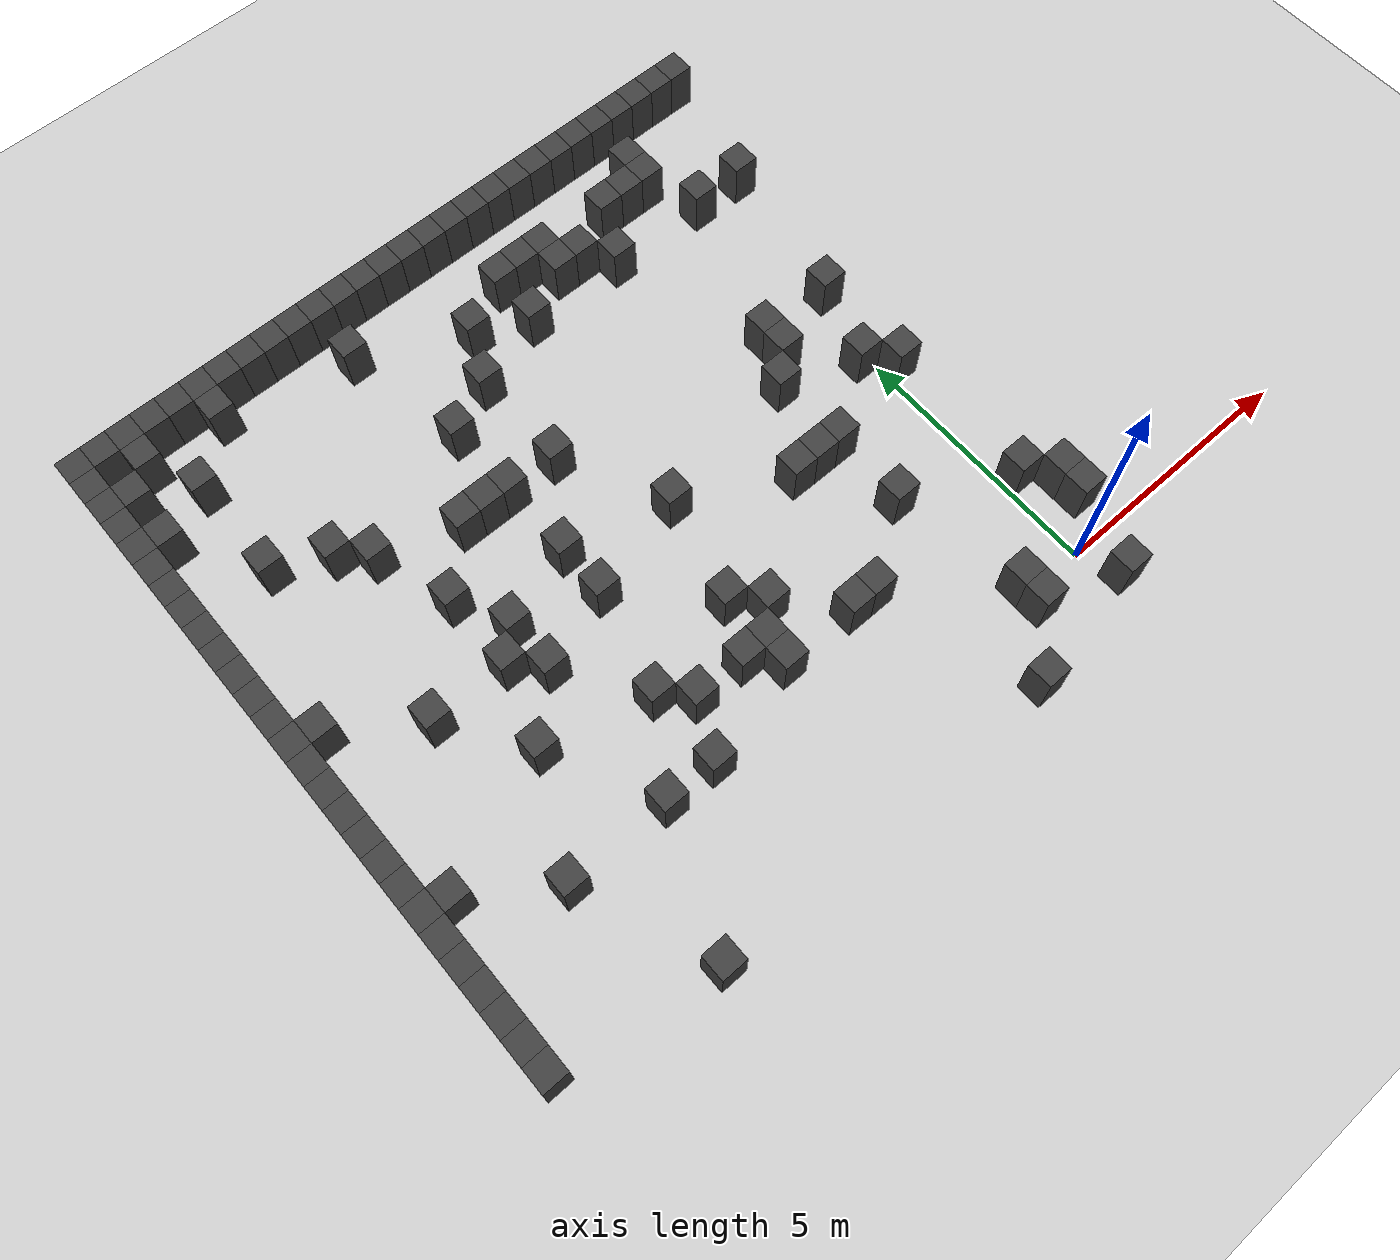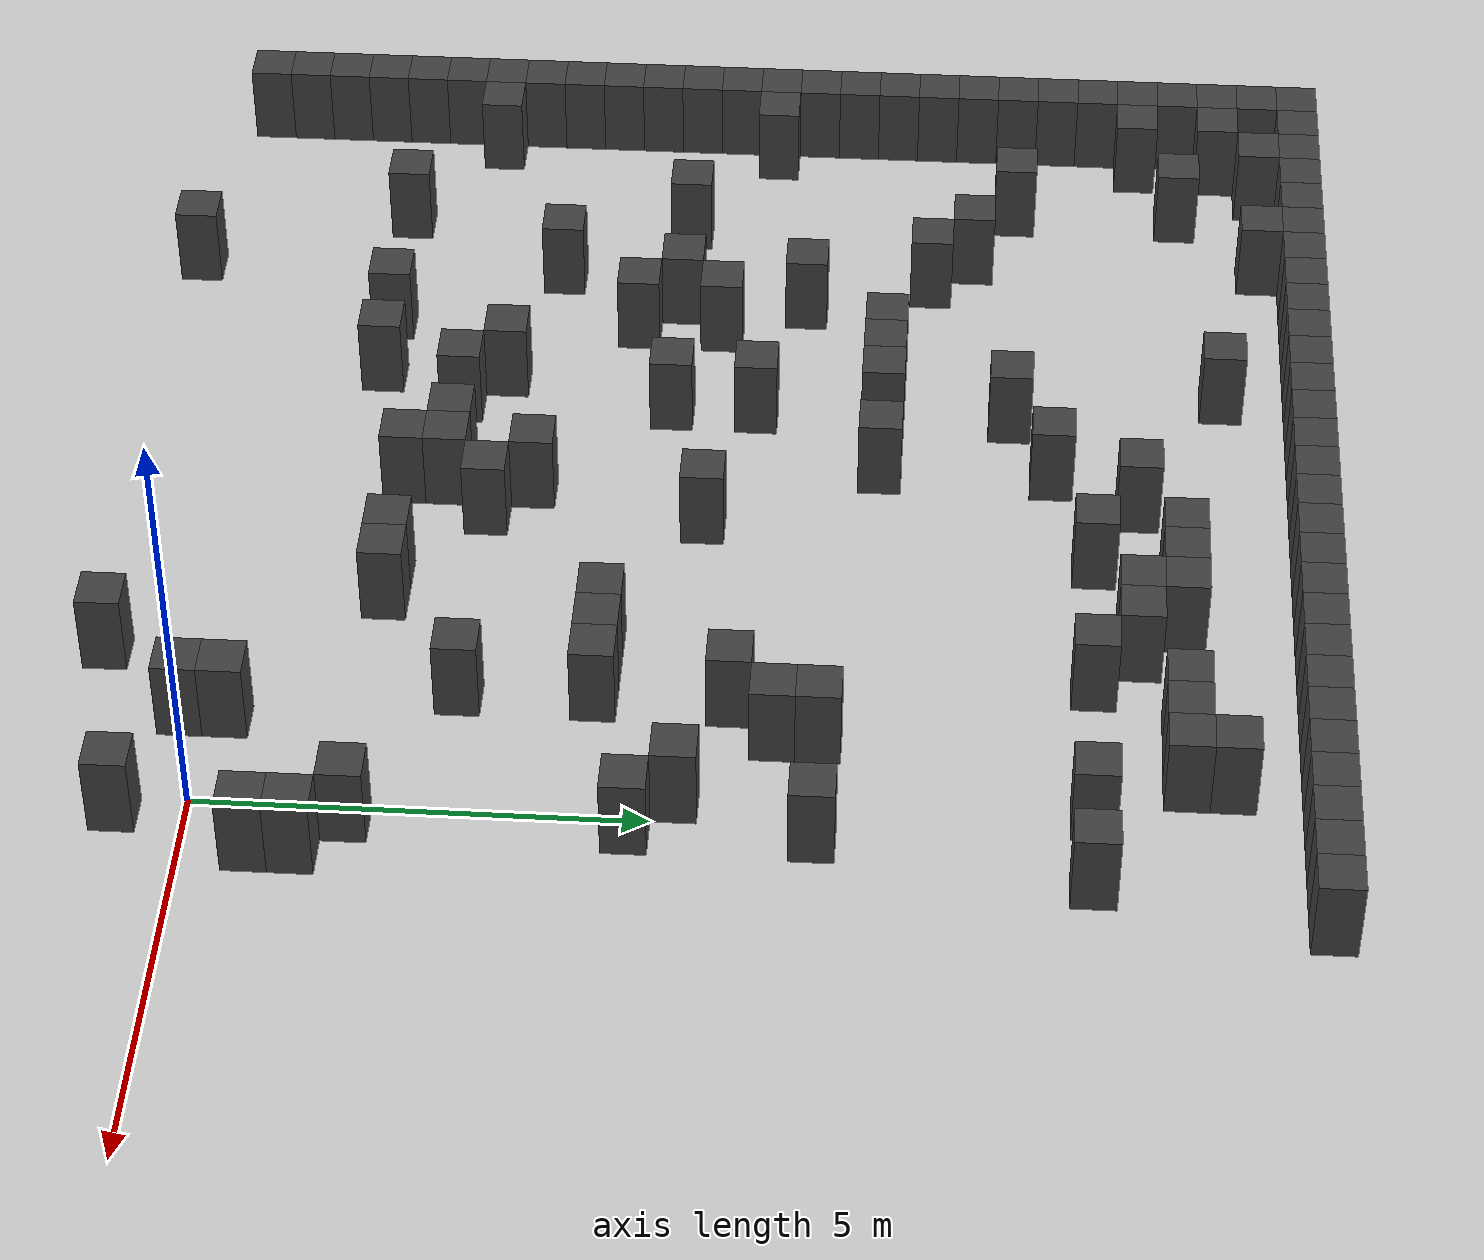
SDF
<sdf version="1.7">
 <world name="map_2522">
  <model name="ground_plane">
   <static>true</static>
   <link name="link">
    <collision name="collision">
     <geometry><plane><normal>0 0 1</normal><size>200 200</size></plane></geometry>
    </collision>
    <visual name="visual">
     <geometry><plane><normal>0 0 1</normal><size>200 200</size></plane></geometry>
     <material><ambient>0.8 0.8 0.8 1</ambient><diffuse>0.8 0.8 0.8 1</diffuse></material>
    </visual>
   </link>
  </model>
  <model name="maze_environment">
   <static>true</static>
   <link name="wall_0">
    <pose>-12.250 12.250 0.500 0 0 0</pose>
    <collision name="col"><geometry><box><size>0.5 0.5 1.0</size></box></geometry></collision>
    <visual name="vis">
     <geometry><box><size>0.5 0.5 1.0</size></box></geometry>
     <material><ambient>0.15 0.15 0.15 1</ambient><diffuse>0.25 0.25 0.25 1</diffuse></material>
    </visual>
   </link>
   <link name="wall_1">
    <pose>-11.750 12.250 0.500 0 0 0</pose>
    <collision name="col"><geometry><box><size>0.5 0.5 1.0</size></box></geometry></collision>
    <visual name="vis">
     <geometry><box><size>0.5 0.5 1.0</size></box></geometry>
     <material><ambient>0.15 0.15 0.15 1</ambient><diffuse>0.25 0.25 0.25 1</diffuse></material>
    </visual>
   </link>
   <link name="wall_2">
    <pose>-11.250 12.250 0.500 0 0 0</pose>
    <collision name="col"><geometry><box><size>0.5 0.5 1.0</size></box></geometry></collision>
    <visual name="vis">
     <geometry><box><size>0.5 0.5 1.0</size></box></geometry>
     <material><ambient>0.15 0.15 0.15 1</ambient><diffuse>0.25 0.25 0.25 1</diffuse></material>
    </visual>
   </link>
   <link name="wall_3">
    <pose>-10.750 12.250 0.500 0 0 0</pose>
    <collision name="col"><geometry><box><size>0.5 0.5 1.0</size></box></geometry></collision>
    <visual name="vis">
     <geometry><box><size>0.5 0.5 1.0</size></box></geometry>
     <material><ambient>0.15 0.15 0.15 1</ambient><diffuse>0.25 0.25 0.25 1</diffuse></material>
    </visual>
   </link>
   <link name="wall_4">
    <pose>-10.250 12.250 0.500 0 0 0</pose>
    <collision name="col"><geometry><box><size>0.5 0.5 1.0</size></box></geometry></collision>
    <visual name="vis">
     <geometry><box><size>0.5 0.5 1.0</size></box></geometry>
     <material><ambient>0.15 0.15 0.15 1</ambient><diffuse>0.25 0.25 0.25 1</diffuse></material>
    </visual>
   </link>
   <link name="wall_5">
    <pose>-9.750 12.250 0.500 0 0 0</pose>
    <collision name="col"><geometry><box><size>0.5 0.5 1.0</size></box></geometry></collision>
    <visual name="vis">
     <geometry><box><size>0.5 0.5 1.0</size></box></geometry>
     <material><ambient>0.15 0.15 0.15 1</ambient><diffuse>0.25 0.25 0.25 1</diffuse></material>
    </visual>
   </link>
   <link name="wall_6">
    <pose>-9.250 12.250 0.500 0 0 0</pose>
    <collision name="col"><geometry><box><size>0.5 0.5 1.0</size></box></geometry></collision>
    <visual name="vis">
     <geometry><box><size>0.5 0.5 1.0</size></box></geometry>
     <material><ambient>0.15 0.15 0.15 1</ambient><diffuse>0.25 0.25 0.25 1</diffuse></material>
    </visual>
   </link>
   <link name="wall_7">
    <pose>-8.750 12.250 0.500 0 0 0</pose>
    <collision name="col"><geometry><box><size>0.5 0.5 1.0</size></box></geometry></collision>
    <visual name="vis">
     <geometry><box><size>0.5 0.5 1.0</size></box></geometry>
     <material><ambient>0.15 0.15 0.15 1</ambient><diffuse>0.25 0.25 0.25 1</diffuse></material>
    </visual>
   </link>
   <link name="wall_8">
    <pose>-8.250 12.250 0.500 0 0 0</pose>
    <collision name="col"><geometry><box><size>0.5 0.5 1.0</size></box></geometry></collision>
    <visual name="vis">
     <geometry><box><size>0.5 0.5 1.0</size></box></geometry>
     <material><ambient>0.15 0.15 0.15 1</ambient><diffuse>0.25 0.25 0.25 1</diffuse></material>
    </visual>
   </link>
   <link name="wall_9">
    <pose>-7.750 12.250 0.500 0 0 0</pose>
    <collision name="col"><geometry><box><size>0.5 0.5 1.0</size></box></geometry></collision>
    <visual name="vis">
     <geometry><box><size>0.5 0.5 1.0</size></box></geometry>
     <material><ambient>0.15 0.15 0.15 1</ambient><diffuse>0.25 0.25 0.25 1</diffuse></material>
    </visual>
   </link>
   <link name="wall_10">
    <pose>-7.250 12.250 0.500 0 0 0</pose>
    <collision name="col"><geometry><box><size>0.5 0.5 1.0</size></box></geometry></collision>
    <visual name="vis">
     <geometry><box><size>0.5 0.5 1.0</size></box></geometry>
     <material><ambient>0.15 0.15 0.15 1</ambient><diffuse>0.25 0.25 0.25 1</diffuse></material>
    </visual>
   </link>
   <link name="wall_11">
    <pose>-6.750 12.250 0.500 0 0 0</pose>
    <collision name="col"><geometry><box><size>0.5 0.5 1.0</size></box></geometry></collision>
    <visual name="vis">
     <geometry><box><size>0.5 0.5 1.0</size></box></geometry>
     <material><ambient>0.15 0.15 0.15 1</ambient><diffuse>0.25 0.25 0.25 1</diffuse></material>
    </visual>
   </link>
   <link name="wall_12">
    <pose>-6.250 12.250 0.500 0 0 0</pose>
    <collision name="col"><geometry><box><size>0.5 0.5 1.0</size></box></geometry></collision>
    <visual name="vis">
     <geometry><box><size>0.5 0.5 1.0</size></box></geometry>
     <material><ambient>0.15 0.15 0.15 1</ambient><diffuse>0.25 0.25 0.25 1</diffuse></material>
    </visual>
   </link>
   <link name="wall_13">
    <pose>-5.750 12.250 0.500 0 0 0</pose>
    <collision name="col"><geometry><box><size>0.5 0.5 1.0</size></box></geometry></collision>
    <visual name="vis">
     <geometry><box><size>0.5 0.5 1.0</size></box></geometry>
     <material><ambient>0.15 0.15 0.15 1</ambient><diffuse>0.25 0.25 0.25 1</diffuse></material>
    </visual>
   </link>
   <link name="wall_14">
    <pose>-5.250 12.250 0.500 0 0 0</pose>
    <collision name="col"><geometry><box><size>0.5 0.5 1.0</size></box></geometry></collision>
    <visual name="vis">
     <geometry><box><size>0.5 0.5 1.0</size></box></geometry>
     <material><ambient>0.15 0.15 0.15 1</ambient><diffuse>0.25 0.25 0.25 1</diffuse></material>
    </visual>
   </link>
   <link name="wall_15">
    <pose>-4.750 12.250 0.500 0 0 0</pose>
    <collision name="col"><geometry><box><size>0.5 0.5 1.0</size></box></geometry></collision>
    <visual name="vis">
     <geometry><box><size>0.5 0.5 1.0</size></box></geometry>
     <material><ambient>0.15 0.15 0.15 1</ambient><diffuse>0.25 0.25 0.25 1</diffuse></material>
    </visual>
   </link>
   <link name="wall_16">
    <pose>-4.250 12.250 0.500 0 0 0</pose>
    <collision name="col"><geometry><box><size>0.5 0.5 1.0</size></box></geometry></collision>
    <visual name="vis">
     <geometry><box><size>0.5 0.5 1.0</size></box></geometry>
     <material><ambient>0.15 0.15 0.15 1</ambient><diffuse>0.25 0.25 0.25 1</diffuse></material>
    </visual>
   </link>
   <link name="wall_17">
    <pose>-3.750 12.250 0.500 0 0 0</pose>
    <collision name="col"><geometry><box><size>0.5 0.5 1.0</size></box></geometry></collision>
    <visual name="vis">
     <geometry><box><size>0.5 0.5 1.0</size></box></geometry>
     <material><ambient>0.15 0.15 0.15 1</ambient><diffuse>0.25 0.25 0.25 1</diffuse></material>
    </visual>
   </link>
   <link name="wall_18">
    <pose>-3.250 12.250 0.500 0 0 0</pose>
    <collision name="col"><geometry><box><size>0.5 0.5 1.0</size></box></geometry></collision>
    <visual name="vis">
     <geometry><box><size>0.5 0.5 1.0</size></box></geometry>
     <material><ambient>0.15 0.15 0.15 1</ambient><diffuse>0.25 0.25 0.25 1</diffuse></material>
    </visual>
   </link>
   <link name="wall_19">
    <pose>-2.750 12.250 0.500 0 0 0</pose>
    <collision name="col"><geometry><box><size>0.5 0.5 1.0</size></box></geometry></collision>
    <visual name="vis">
     <geometry><box><size>0.5 0.5 1.0</size></box></geometry>
     <material><ambient>0.15 0.15 0.15 1</ambient><diffuse>0.25 0.25 0.25 1</diffuse></material>
    </visual>
   </link>
   <link name="wall_20">
    <pose>-2.250 12.250 0.500 0 0 0</pose>
    <collision name="col"><geometry><box><size>0.5 0.5 1.0</size></box></geometry></collision>
    <visual name="vis">
     <geometry><box><size>0.5 0.5 1.0</size></box></geometry>
     <material><ambient>0.15 0.15 0.15 1</ambient><diffuse>0.25 0.25 0.25 1</diffuse></material>
    </visual>
   </link>
   <link name="wall_21">
    <pose>-1.750 12.250 0.500 0 0 0</pose>
    <collision name="col"><geometry><box><size>0.5 0.5 1.0</size></box></geometry></collision>
    <visual name="vis">
     <geometry><box><size>0.5 0.5 1.0</size></box></geometry>
     <material><ambient>0.15 0.15 0.15 1</ambient><diffuse>0.25 0.25 0.25 1</diffuse></material>
    </visual>
   </link>
   <link name="wall_22">
    <pose>-1.250 12.250 0.500 0 0 0</pose>
    <collision name="col"><geometry><box><size>0.5 0.5 1.0</size></box></geometry></collision>
    <visual name="vis">
     <geometry><box><size>0.5 0.5 1.0</size></box></geometry>
     <material><ambient>0.15 0.15 0.15 1</ambient><diffuse>0.25 0.25 0.25 1</diffuse></material>
    </visual>
   </link>
   <link name="wall_23">
    <pose>-0.750 12.250 0.500 0 0 0</pose>
    <collision name="col"><geometry><box><size>0.5 0.5 1.0</size></box></geometry></collision>
    <visual name="vis">
     <geometry><box><size>0.5 0.5 1.0</size></box></geometry>
     <material><ambient>0.15 0.15 0.15 1</ambient><diffuse>0.25 0.25 0.25 1</diffuse></material>
    </visual>
   </link>
   <link name="wall_24">
    <pose>-0.250 12.250 0.500 0 0 0</pose>
    <collision name="col"><geometry><box><size>0.5 0.5 1.0</size></box></geometry></collision>
    <visual name="vis">
     <geometry><box><size>0.5 0.5 1.0</size></box></geometry>
     <material><ambient>0.15 0.15 0.15 1</ambient><diffuse>0.25 0.25 0.25 1</diffuse></material>
    </visual>
   </link>
   <link name="wall_25">
    <pose>0.250 12.250 0.500 0 0 0</pose>
    <collision name="col"><geometry><box><size>0.5 0.5 1.0</size></box></geometry></collision>
    <visual name="vis">
     <geometry><box><size>0.5 0.5 1.0</size></box></geometry>
     <material><ambient>0.15 0.15 0.15 1</ambient><diffuse>0.25 0.25 0.25 1</diffuse></material>
    </visual>
   </link>
   <link name="wall_26">
    <pose>0.750 12.250 0.500 0 0 0</pose>
    <collision name="col"><geometry><box><size>0.5 0.5 1.0</size></box></geometry></collision>
    <visual name="vis">
     <geometry><box><size>0.5 0.5 1.0</size></box></geometry>
     <material><ambient>0.15 0.15 0.15 1</ambient><diffuse>0.25 0.25 0.25 1</diffuse></material>
    </visual>
   </link>
   <link name="wall_27">
    <pose>1.250 12.250 0.500 0 0 0</pose>
    <collision name="col"><geometry><box><size>0.5 0.5 1.0</size></box></geometry></collision>
    <visual name="vis">
     <geometry><box><size>0.5 0.5 1.0</size></box></geometry>
     <material><ambient>0.15 0.15 0.15 1</ambient><diffuse>0.25 0.25 0.25 1</diffuse></material>
    </visual>
   </link>
   <link name="wall_50">
    <pose>-12.250 11.750 0.500 0 0 0</pose>
    <collision name="col"><geometry><box><size>0.5 0.5 1.0</size></box></geometry></collision>
    <visual name="vis">
     <geometry><box><size>0.5 0.5 1.0</size></box></geometry>
     <material><ambient>0.15 0.15 0.15 1</ambient><diffuse>0.25 0.25 0.25 1</diffuse></material>
    </visual>
   </link>
   <link name="wall_51">
    <pose>-11.250 11.750 0.500 0 0 0</pose>
    <collision name="col"><geometry><box><size>0.5 0.5 1.0</size></box></geometry></collision>
    <visual name="vis">
     <geometry><box><size>0.5 0.5 1.0</size></box></geometry>
     <material><ambient>0.15 0.15 0.15 1</ambient><diffuse>0.25 0.25 0.25 1</diffuse></material>
    </visual>
   </link>
   <link name="wall_52">
    <pose>-9.750 11.750 0.500 0 0 0</pose>
    <collision name="col"><geometry><box><size>0.5 0.5 1.0</size></box></geometry></collision>
    <visual name="vis">
     <geometry><box><size>0.5 0.5 1.0</size></box></geometry>
     <material><ambient>0.15 0.15 0.15 1</ambient><diffuse>0.25 0.25 0.25 1</diffuse></material>
    </visual>
   </link>
   <link name="wall_55">
    <pose>-12.250 11.250 0.500 0 0 0</pose>
    <collision name="col"><geometry><box><size>0.5 0.5 1.0</size></box></geometry></collision>
    <visual name="vis">
     <geometry><box><size>0.5 0.5 1.0</size></box></geometry>
     <material><ambient>0.15 0.15 0.15 1</ambient><diffuse>0.25 0.25 0.25 1</diffuse></material>
    </visual>
   </link>
   <link name="wall_56">
    <pose>-11.750 11.250 0.500 0 0 0</pose>
    <collision name="col"><geometry><box><size>0.5 0.5 1.0</size></box></geometry></collision>
    <visual name="vis">
     <geometry><box><size>0.5 0.5 1.0</size></box></geometry>
     <material><ambient>0.15 0.15 0.15 1</ambient><diffuse>0.25 0.25 0.25 1</diffuse></material>
    </visual>
   </link>
   <link name="wall_57">
    <pose>-7.250 11.250 0.500 0 0 0</pose>
    <collision name="col"><geometry><box><size>0.5 0.5 1.0</size></box></geometry></collision>
    <visual name="vis">
     <geometry><box><size>0.5 0.5 1.0</size></box></geometry>
     <material><ambient>0.15 0.15 0.15 1</ambient><diffuse>0.25 0.25 0.25 1</diffuse></material>
    </visual>
   </link>
   <link name="wall_58">
    <pose>-0.750 11.250 0.500 0 0 0</pose>
    <collision name="col"><geometry><box><size>0.5 0.5 1.0</size></box></geometry></collision>
    <visual name="vis">
     <geometry><box><size>0.5 0.5 1.0</size></box></geometry>
     <material><ambient>0.15 0.15 0.15 1</ambient><diffuse>0.25 0.25 0.25 1</diffuse></material>
    </visual>
   </link>
   <link name="wall_63">
    <pose>-12.250 10.750 0.500 0 0 0</pose>
    <collision name="col"><geometry><box><size>0.5 0.5 1.0</size></box></geometry></collision>
    <visual name="vis">
     <geometry><box><size>0.5 0.5 1.0</size></box></geometry>
     <material><ambient>0.15 0.15 0.15 1</ambient><diffuse>0.25 0.25 0.25 1</diffuse></material>
    </visual>
   </link>
   <link name="wall_64">
    <pose>-10.750 10.750 0.500 0 0 0</pose>
    <collision name="col"><geometry><box><size>0.5 0.5 1.0</size></box></geometry></collision>
    <visual name="vis">
     <geometry><box><size>0.5 0.5 1.0</size></box></geometry>
     <material><ambient>0.15 0.15 0.15 1</ambient><diffuse>0.25 0.25 0.25 1</diffuse></material>
    </visual>
   </link>
   <link name="wall_65">
    <pose>-4.250 10.750 0.500 0 0 0</pose>
    <collision name="col"><geometry><box><size>0.5 0.5 1.0</size></box></geometry></collision>
    <visual name="vis">
     <geometry><box><size>0.5 0.5 1.0</size></box></geometry>
     <material><ambient>0.15 0.15 0.15 1</ambient><diffuse>0.25 0.25 0.25 1</diffuse></material>
    </visual>
   </link>
   <link name="wall_66">
    <pose>-3.750 10.750 0.500 0 0 0</pose>
    <collision name="col"><geometry><box><size>0.5 0.5 1.0</size></box></geometry></collision>
    <visual name="vis">
     <geometry><box><size>0.5 0.5 1.0</size></box></geometry>
     <material><ambient>0.15 0.15 0.15 1</ambient><diffuse>0.25 0.25 0.25 1</diffuse></material>
    </visual>
   </link>
   <link name="wall_67">
    <pose>-3.250 10.750 0.500 0 0 0</pose>
    <collision name="col"><geometry><box><size>0.5 0.5 1.0</size></box></geometry></collision>
    <visual name="vis">
     <geometry><box><size>0.5 0.5 1.0</size></box></geometry>
     <material><ambient>0.15 0.15 0.15 1</ambient><diffuse>0.25 0.25 0.25 1</diffuse></material>
    </visual>
   </link>
   <link name="wall_68">
    <pose>-1.750 10.750 0.500 0 0 0</pose>
    <collision name="col"><geometry><box><size>0.5 0.5 1.0</size></box></geometry></collision>
    <visual name="vis">
     <geometry><box><size>0.5 0.5 1.0</size></box></geometry>
     <material><ambient>0.15 0.15 0.15 1</ambient><diffuse>0.25 0.25 0.25 1</diffuse></material>
    </visual>
   </link>
   <link name="wall_69">
    <pose>-1.250 10.750 0.500 0 0 0</pose>
    <collision name="col"><geometry><box><size>0.5 0.5 1.0</size></box></geometry></collision>
    <visual name="vis">
     <geometry><box><size>0.5 0.5 1.0</size></box></geometry>
     <material><ambient>0.15 0.15 0.15 1</ambient><diffuse>0.25 0.25 0.25 1</diffuse></material>
    </visual>
   </link>
   <link name="wall_70">
    <pose>-0.750 10.750 0.500 0 0 0</pose>
    <collision name="col"><geometry><box><size>0.5 0.5 1.0</size></box></geometry></collision>
    <visual name="vis">
     <geometry><box><size>0.5 0.5 1.0</size></box></geometry>
     <material><ambient>0.15 0.15 0.15 1</ambient><diffuse>0.25 0.25 0.25 1</diffuse></material>
    </visual>
   </link>
   <link name="wall_75">
    <pose>-12.250 10.250 0.500 0 0 0</pose>
    <collision name="col"><geometry><box><size>0.5 0.5 1.0</size></box></geometry></collision>
    <visual name="vis">
     <geometry><box><size>0.5 0.5 1.0</size></box></geometry>
     <material><ambient>0.15 0.15 0.15 1</ambient><diffuse>0.25 0.25 0.25 1</diffuse></material>
    </visual>
   </link>
   <link name="wall_76">
    <pose>-11.750 10.250 0.500 0 0 0</pose>
    <collision name="col"><geometry><box><size>0.5 0.5 1.0</size></box></geometry></collision>
    <visual name="vis">
     <geometry><box><size>0.5 0.5 1.0</size></box></geometry>
     <material><ambient>0.15 0.15 0.15 1</ambient><diffuse>0.25 0.25 0.25 1</diffuse></material>
    </visual>
   </link>
   <link name="wall_77">
    <pose>-5.250 10.250 0.500 0 0 0</pose>
    <collision name="col"><geometry><box><size>0.5 0.5 1.0</size></box></geometry></collision>
    <visual name="vis">
     <geometry><box><size>0.5 0.5 1.0</size></box></geometry>
     <material><ambient>0.15 0.15 0.15 1</ambient><diffuse>0.25 0.25 0.25 1</diffuse></material>
    </visual>
   </link>
   <link name="wall_78">
    <pose>-3.250 10.250 0.500 0 0 0</pose>
    <collision name="col"><geometry><box><size>0.5 0.5 1.0</size></box></geometry></collision>
    <visual name="vis">
     <geometry><box><size>0.5 0.5 1.0</size></box></geometry>
     <material><ambient>0.15 0.15 0.15 1</ambient><diffuse>0.25 0.25 0.25 1</diffuse></material>
    </visual>
   </link>
   <link name="wall_79">
    <pose>-2.750 10.250 0.500 0 0 0</pose>
    <collision name="col"><geometry><box><size>0.5 0.5 1.0</size></box></geometry></collision>
    <visual name="vis">
     <geometry><box><size>0.5 0.5 1.0</size></box></geometry>
     <material><ambient>0.15 0.15 0.15 1</ambient><diffuse>0.25 0.25 0.25 1</diffuse></material>
    </visual>
   </link>
   <link name="wall_83">
    <pose>-12.250 9.750 0.500 0 0 0</pose>
    <collision name="col"><geometry><box><size>0.5 0.5 1.0</size></box></geometry></collision>
    <visual name="vis">
     <geometry><box><size>0.5 0.5 1.0</size></box></geometry>
     <material><ambient>0.15 0.15 0.15 1</ambient><diffuse>0.25 0.25 0.25 1</diffuse></material>
    </visual>
   </link>
   <link name="wall_84">
    <pose>-4.250 9.750 0.500 0 0 0</pose>
    <collision name="col"><geometry><box><size>0.5 0.5 1.0</size></box></geometry></collision>
    <visual name="vis">
     <geometry><box><size>0.5 0.5 1.0</size></box></geometry>
     <material><ambient>0.15 0.15 0.15 1</ambient><diffuse>0.25 0.25 0.25 1</diffuse></material>
    </visual>
   </link>
   <link name="wall_85">
    <pose>-2.250 9.750 0.500 0 0 0</pose>
    <collision name="col"><geometry><box><size>0.5 0.5 1.0</size></box></geometry></collision>
    <visual name="vis">
     <geometry><box><size>0.5 0.5 1.0</size></box></geometry>
     <material><ambient>0.15 0.15 0.15 1</ambient><diffuse>0.25 0.25 0.25 1</diffuse></material>
    </visual>
   </link>
   <link name="wall_86">
    <pose>-0.250 9.750 0.500 0 0 0</pose>
    <collision name="col"><geometry><box><size>0.5 0.5 1.0</size></box></geometry></collision>
    <visual name="vis">
     <geometry><box><size>0.5 0.5 1.0</size></box></geometry>
     <material><ambient>0.15 0.15 0.15 1</ambient><diffuse>0.25 0.25 0.25 1</diffuse></material>
    </visual>
   </link>
   <link name="wall_87">
    <pose>0.750 9.750 0.500 0 0 0</pose>
    <collision name="col"><geometry><box><size>0.5 0.5 1.0</size></box></geometry></collision>
    <visual name="vis">
     <geometry><box><size>0.5 0.5 1.0</size></box></geometry>
     <material><ambient>0.15 0.15 0.15 1</ambient><diffuse>0.25 0.25 0.25 1</diffuse></material>
    </visual>
   </link>
   <link name="wall_91">
    <pose>-12.250 9.250 0.500 0 0 0</pose>
    <collision name="col"><geometry><box><size>0.5 0.5 1.0</size></box></geometry></collision>
    <visual name="vis">
     <geometry><box><size>0.5 0.5 1.0</size></box></geometry>
     <material><ambient>0.15 0.15 0.15 1</ambient><diffuse>0.25 0.25 0.25 1</diffuse></material>
    </visual>
   </link>
   <link name="wall_92">
    <pose>-5.750 9.250 0.500 0 0 0</pose>
    <collision name="col"><geometry><box><size>0.5 0.5 1.0</size></box></geometry></collision>
    <visual name="vis">
     <geometry><box><size>0.5 0.5 1.0</size></box></geometry>
     <material><ambient>0.15 0.15 0.15 1</ambient><diffuse>0.25 0.25 0.25 1</diffuse></material>
    </visual>
   </link>
   <link name="wall_97">
    <pose>-12.250 8.750 0.500 0 0 0</pose>
    <collision name="col"><geometry><box><size>0.5 0.5 1.0</size></box></geometry></collision>
    <visual name="vis">
     <geometry><box><size>0.5 0.5 1.0</size></box></geometry>
     <material><ambient>0.15 0.15 0.15 1</ambient><diffuse>0.25 0.25 0.25 1</diffuse></material>
    </visual>
   </link>
   <link name="wall_98">
    <pose>-10.750 8.750 0.500 0 0 0</pose>
    <collision name="col"><geometry><box><size>0.5 0.5 1.0</size></box></geometry></collision>
    <visual name="vis">
     <geometry><box><size>0.5 0.5 1.0</size></box></geometry>
     <material><ambient>0.15 0.15 0.15 1</ambient><diffuse>0.25 0.25 0.25 1</diffuse></material>
    </visual>
   </link>
   <link name="wall_99">
    <pose>-6.750 8.750 0.500 0 0 0</pose>
    <collision name="col"><geometry><box><size>0.5 0.5 1.0</size></box></geometry></collision>
    <visual name="vis">
     <geometry><box><size>0.5 0.5 1.0</size></box></geometry>
     <material><ambient>0.15 0.15 0.15 1</ambient><diffuse>0.25 0.25 0.25 1</diffuse></material>
    </visual>
   </link>
   <link name="wall_104">
    <pose>-12.250 8.250 0.500 0 0 0</pose>
    <collision name="col"><geometry><box><size>0.5 0.5 1.0</size></box></geometry></collision>
    <visual name="vis">
     <geometry><box><size>0.5 0.5 1.0</size></box></geometry>
     <material><ambient>0.15 0.15 0.15 1</ambient><diffuse>0.25 0.25 0.25 1</diffuse></material>
    </visual>
   </link>
   <link name="wall_105">
    <pose>-9.750 8.250 0.500 0 0 0</pose>
    <collision name="col"><geometry><box><size>0.5 0.5 1.0</size></box></geometry></collision>
    <visual name="vis">
     <geometry><box><size>0.5 0.5 1.0</size></box></geometry>
     <material><ambient>0.15 0.15 0.15 1</ambient><diffuse>0.25 0.25 0.25 1</diffuse></material>
    </visual>
   </link>
   <link name="wall_109">
    <pose>-12.250 7.750 0.500 0 0 0</pose>
    <collision name="col"><geometry><box><size>0.5 0.5 1.0</size></box></geometry></collision>
    <visual name="vis">
     <geometry><box><size>0.5 0.5 1.0</size></box></geometry>
     <material><ambient>0.15 0.15 0.15 1</ambient><diffuse>0.25 0.25 0.25 1</diffuse></material>
    </visual>
   </link>
   <link name="wall_110">
    <pose>-9.250 7.750 0.500 0 0 0</pose>
    <collision name="col"><geometry><box><size>0.5 0.5 1.0</size></box></geometry></collision>
    <visual name="vis">
     <geometry><box><size>0.5 0.5 1.0</size></box></geometry>
     <material><ambient>0.15 0.15 0.15 1</ambient><diffuse>0.25 0.25 0.25 1</diffuse></material>
    </visual>
   </link>
   <link name="wall_115">
    <pose>-12.250 7.250 0.500 0 0 0</pose>
    <collision name="col"><geometry><box><size>0.5 0.5 1.0</size></box></geometry></collision>
    <visual name="vis">
     <geometry><box><size>0.5 0.5 1.0</size></box></geometry>
     <material><ambient>0.15 0.15 0.15 1</ambient><diffuse>0.25 0.25 0.25 1</diffuse></material>
    </visual>
   </link>
   <link name="wall_116">
    <pose>-7.750 7.250 0.500 0 0 0</pose>
    <collision name="col"><geometry><box><size>0.5 0.5 1.0</size></box></geometry></collision>
    <visual name="vis">
     <geometry><box><size>0.5 0.5 1.0</size></box></geometry>
     <material><ambient>0.15 0.15 0.15 1</ambient><diffuse>0.25 0.25 0.25 1</diffuse></material>
    </visual>
   </link>
   <link name="wall_117">
    <pose>-7.250 7.250 0.500 0 0 0</pose>
    <collision name="col"><geometry><box><size>0.5 0.5 1.0</size></box></geometry></collision>
    <visual name="vis">
     <geometry><box><size>0.5 0.5 1.0</size></box></geometry>
     <material><ambient>0.15 0.15 0.15 1</ambient><diffuse>0.25 0.25 0.25 1</diffuse></material>
    </visual>
   </link>
   <link name="wall_118">
    <pose>-6.750 7.250 0.500 0 0 0</pose>
    <collision name="col"><geometry><box><size>0.5 0.5 1.0</size></box></geometry></collision>
    <visual name="vis">
     <geometry><box><size>0.5 0.5 1.0</size></box></geometry>
     <material><ambient>0.15 0.15 0.15 1</ambient><diffuse>0.25 0.25 0.25 1</diffuse></material>
    </visual>
   </link>
   <link name="wall_119">
    <pose>-5.750 7.250 0.500 0 0 0</pose>
    <collision name="col"><geometry><box><size>0.5 0.5 1.0</size></box></geometry></collision>
    <visual name="vis">
     <geometry><box><size>0.5 0.5 1.0</size></box></geometry>
     <material><ambient>0.15 0.15 0.15 1</ambient><diffuse>0.25 0.25 0.25 1</diffuse></material>
    </visual>
   </link>
   <link name="wall_123">
    <pose>-12.250 6.750 0.500 0 0 0</pose>
    <collision name="col"><geometry><box><size>0.5 0.5 1.0</size></box></geometry></collision>
    <visual name="vis">
     <geometry><box><size>0.5 0.5 1.0</size></box></geometry>
     <material><ambient>0.15 0.15 0.15 1</ambient><diffuse>0.25 0.25 0.25 1</diffuse></material>
    </visual>
   </link>
   <link name="wall_124">
    <pose>-1.250 6.750 0.500 0 0 0</pose>
    <collision name="col"><geometry><box><size>0.5 0.5 1.0</size></box></geometry></collision>
    <visual name="vis">
     <geometry><box><size>0.5 0.5 1.0</size></box></geometry>
     <material><ambient>0.15 0.15 0.15 1</ambient><diffuse>0.25 0.25 0.25 1</diffuse></material>
    </visual>
   </link>
   <link name="wall_125">
    <pose>0.250 6.750 0.500 0 0 0</pose>
    <collision name="col"><geometry><box><size>0.5 0.5 1.0</size></box></geometry></collision>
    <visual name="vis">
     <geometry><box><size>0.5 0.5 1.0</size></box></geometry>
     <material><ambient>0.15 0.15 0.15 1</ambient><diffuse>0.25 0.25 0.25 1</diffuse></material>
    </visual>
   </link>
   <link name="wall_129">
    <pose>-12.250 6.250 0.500 0 0 0</pose>
    <collision name="col"><geometry><box><size>0.5 0.5 1.0</size></box></geometry></collision>
    <visual name="vis">
     <geometry><box><size>0.5 0.5 1.0</size></box></geometry>
     <material><ambient>0.15 0.15 0.15 1</ambient><diffuse>0.25 0.25 0.25 1</diffuse></material>
    </visual>
   </link>
   <link name="wall_130">
    <pose>-8.750 6.250 0.500 0 0 0</pose>
    <collision name="col"><geometry><box><size>0.5 0.5 1.0</size></box></geometry></collision>
    <visual name="vis">
     <geometry><box><size>0.5 0.5 1.0</size></box></geometry>
     <material><ambient>0.15 0.15 0.15 1</ambient><diffuse>0.25 0.25 0.25 1</diffuse></material>
    </visual>
   </link>
   <link name="wall_131">
    <pose>-1.250 6.250 0.500 0 0 0</pose>
    <collision name="col"><geometry><box><size>0.5 0.5 1.0</size></box></geometry></collision>
    <visual name="vis">
     <geometry><box><size>0.5 0.5 1.0</size></box></geometry>
     <material><ambient>0.15 0.15 0.15 1</ambient><diffuse>0.25 0.25 0.25 1</diffuse></material>
    </visual>
   </link>
   <link name="wall_135">
    <pose>-12.250 5.750 0.500 0 0 0</pose>
    <collision name="col"><geometry><box><size>0.5 0.5 1.0</size></box></geometry></collision>
    <visual name="vis">
     <geometry><box><size>0.5 0.5 1.0</size></box></geometry>
     <material><ambient>0.15 0.15 0.15 1</ambient><diffuse>0.25 0.25 0.25 1</diffuse></material>
    </visual>
   </link>
   <link name="wall_136">
    <pose>-11.750 5.750 0.500 0 0 0</pose>
    <collision name="col"><geometry><box><size>0.5 0.5 1.0</size></box></geometry></collision>
    <visual name="vis">
     <geometry><box><size>0.5 0.5 1.0</size></box></geometry>
     <material><ambient>0.15 0.15 0.15 1</ambient><diffuse>0.25 0.25 0.25 1</diffuse></material>
    </visual>
   </link>
   <link name="wall_137">
    <pose>-6.750 5.750 0.500 0 0 0</pose>
    <collision name="col"><geometry><box><size>0.5 0.5 1.0</size></box></geometry></collision>
    <visual name="vis">
     <geometry><box><size>0.5 0.5 1.0</size></box></geometry>
     <material><ambient>0.15 0.15 0.15 1</ambient><diffuse>0.25 0.25 0.25 1</diffuse></material>
    </visual>
   </link>
   <link name="wall_138">
    <pose>-1.750 5.750 0.500 0 0 0</pose>
    <collision name="col"><geometry><box><size>0.5 0.5 1.0</size></box></geometry></collision>
    <visual name="vis">
     <geometry><box><size>0.5 0.5 1.0</size></box></geometry>
     <material><ambient>0.15 0.15 0.15 1</ambient><diffuse>0.25 0.25 0.25 1</diffuse></material>
    </visual>
   </link>
   <link name="wall_142">
    <pose>-12.250 5.250 0.500 0 0 0</pose>
    <collision name="col"><geometry><box><size>0.5 0.5 1.0</size></box></geometry></collision>
    <visual name="vis">
     <geometry><box><size>0.5 0.5 1.0</size></box></geometry>
     <material><ambient>0.15 0.15 0.15 1</ambient><diffuse>0.25 0.25 0.25 1</diffuse></material>
    </visual>
   </link>
   <link name="wall_143">
    <pose>-8.250 5.250 0.500 0 0 0</pose>
    <collision name="col"><geometry><box><size>0.5 0.5 1.0</size></box></geometry></collision>
    <visual name="vis">
     <geometry><box><size>0.5 0.5 1.0</size></box></geometry>
     <material><ambient>0.15 0.15 0.15 1</ambient><diffuse>0.25 0.25 0.25 1</diffuse></material>
    </visual>
   </link>
   <link name="wall_144">
    <pose>-4.750 5.250 0.500 0 0 0</pose>
    <collision name="col"><geometry><box><size>0.5 0.5 1.0</size></box></geometry></collision>
    <visual name="vis">
     <geometry><box><size>0.5 0.5 1.0</size></box></geometry>
     <material><ambient>0.15 0.15 0.15 1</ambient><diffuse>0.25 0.25 0.25 1</diffuse></material>
    </visual>
   </link>
   <link name="wall_145">
    <pose>-0.250 5.250 0.500 0 0 0</pose>
    <collision name="col"><geometry><box><size>0.5 0.5 1.0</size></box></geometry></collision>
    <visual name="vis">
     <geometry><box><size>0.5 0.5 1.0</size></box></geometry>
     <material><ambient>0.15 0.15 0.15 1</ambient><diffuse>0.25 0.25 0.25 1</diffuse></material>
    </visual>
   </link>
   <link name="wall_148">
    <pose>-12.250 4.750 0.500 0 0 0</pose>
    <collision name="col"><geometry><box><size>0.5 0.5 1.0</size></box></geometry></collision>
    <visual name="vis">
     <geometry><box><size>0.5 0.5 1.0</size></box></geometry>
     <material><ambient>0.15 0.15 0.15 1</ambient><diffuse>0.25 0.25 0.25 1</diffuse></material>
    </visual>
   </link>
   <link name="wall_149">
    <pose>-10.250 4.750 0.500 0 0 0</pose>
    <collision name="col"><geometry><box><size>0.5 0.5 1.0</size></box></geometry></collision>
    <visual name="vis">
     <geometry><box><size>0.5 0.5 1.0</size></box></geometry>
     <material><ambient>0.15 0.15 0.15 1</ambient><diffuse>0.25 0.25 0.25 1</diffuse></material>
    </visual>
   </link>
   <link name="wall_150">
    <pose>-8.750 4.750 0.500 0 0 0</pose>
    <collision name="col"><geometry><box><size>0.5 0.5 1.0</size></box></geometry></collision>
    <visual name="vis">
     <geometry><box><size>0.5 0.5 1.0</size></box></geometry>
     <material><ambient>0.15 0.15 0.15 1</ambient><diffuse>0.25 0.25 0.25 1</diffuse></material>
    </visual>
   </link>
   <link name="wall_151">
    <pose>-6.750 4.750 0.500 0 0 0</pose>
    <collision name="col"><geometry><box><size>0.5 0.5 1.0</size></box></geometry></collision>
    <visual name="vis">
     <geometry><box><size>0.5 0.5 1.0</size></box></geometry>
     <material><ambient>0.15 0.15 0.15 1</ambient><diffuse>0.25 0.25 0.25 1</diffuse></material>
    </visual>
   </link>
   <link name="wall_152">
    <pose>0.250 4.750 0.500 0 0 0</pose>
    <collision name="col"><geometry><box><size>0.5 0.5 1.0</size></box></geometry></collision>
    <visual name="vis">
     <geometry><box><size>0.5 0.5 1.0</size></box></geometry>
     <material><ambient>0.15 0.15 0.15 1</ambient><diffuse>0.25 0.25 0.25 1</diffuse></material>
    </visual>
   </link>
   <link name="wall_156">
    <pose>-12.250 4.250 0.500 0 0 0</pose>
    <collision name="col"><geometry><box><size>0.5 0.5 1.0</size></box></geometry></collision>
    <visual name="vis">
     <geometry><box><size>0.5 0.5 1.0</size></box></geometry>
     <material><ambient>0.15 0.15 0.15 1</ambient><diffuse>0.25 0.25 0.25 1</diffuse></material>
    </visual>
   </link>
   <link name="wall_157">
    <pose>-8.250 4.250 0.500 0 0 0</pose>
    <collision name="col"><geometry><box><size>0.5 0.5 1.0</size></box></geometry></collision>
    <visual name="vis">
     <geometry><box><size>0.5 0.5 1.0</size></box></geometry>
     <material><ambient>0.15 0.15 0.15 1</ambient><diffuse>0.25 0.25 0.25 1</diffuse></material>
    </visual>
   </link>
   <link name="wall_158">
    <pose>-2.750 4.250 0.500 0 0 0</pose>
    <collision name="col"><geometry><box><size>0.5 0.5 1.0</size></box></geometry></collision>
    <visual name="vis">
     <geometry><box><size>0.5 0.5 1.0</size></box></geometry>
     <material><ambient>0.15 0.15 0.15 1</ambient><diffuse>0.25 0.25 0.25 1</diffuse></material>
    </visual>
   </link>
   <link name="wall_159">
    <pose>-2.250 4.250 0.500 0 0 0</pose>
    <collision name="col"><geometry><box><size>0.5 0.5 1.0</size></box></geometry></collision>
    <visual name="vis">
     <geometry><box><size>0.5 0.5 1.0</size></box></geometry>
     <material><ambient>0.15 0.15 0.15 1</ambient><diffuse>0.25 0.25 0.25 1</diffuse></material>
    </visual>
   </link>
   <link name="wall_160">
    <pose>-1.750 4.250 0.500 0 0 0</pose>
    <collision name="col"><geometry><box><size>0.5 0.5 1.0</size></box></geometry></collision>
    <visual name="vis">
     <geometry><box><size>0.5 0.5 1.0</size></box></geometry>
     <material><ambient>0.15 0.15 0.15 1</ambient><diffuse>0.25 0.25 0.25 1</diffuse></material>
    </visual>
   </link>
   <link name="wall_167">
    <pose>-12.250 3.750 0.500 0 0 0</pose>
    <collision name="col"><geometry><box><size>0.5 0.5 1.0</size></box></geometry></collision>
    <visual name="vis">
     <geometry><box><size>0.5 0.5 1.0</size></box></geometry>
     <material><ambient>0.15 0.15 0.15 1</ambient><diffuse>0.25 0.25 0.25 1</diffuse></material>
    </visual>
   </link>
   <link name="wall_171">
    <pose>-12.250 3.250 0.500 0 0 0</pose>
    <collision name="col"><geometry><box><size>0.5 0.5 1.0</size></box></geometry></collision>
    <visual name="vis">
     <geometry><box><size>0.5 0.5 1.0</size></box></geometry>
     <material><ambient>0.15 0.15 0.15 1</ambient><diffuse>0.25 0.25 0.25 1</diffuse></material>
    </visual>
   </link>
   <link name="wall_172">
    <pose>-9.250 3.250 0.500 0 0 0</pose>
    <collision name="col"><geometry><box><size>0.5 0.5 1.0</size></box></geometry></collision>
    <visual name="vis">
     <geometry><box><size>0.5 0.5 1.0</size></box></geometry>
     <material><ambient>0.15 0.15 0.15 1</ambient><diffuse>0.25 0.25 0.25 1</diffuse></material>
    </visual>
   </link>
   <link name="wall_173">
    <pose>-5.250 3.250 0.500 0 0 0</pose>
    <collision name="col"><geometry><box><size>0.5 0.5 1.0</size></box></geometry></collision>
    <visual name="vis">
     <geometry><box><size>0.5 0.5 1.0</size></box></geometry>
     <material><ambient>0.15 0.15 0.15 1</ambient><diffuse>0.25 0.25 0.25 1</diffuse></material>
    </visual>
   </link>
   <link name="wall_180">
    <pose>-12.250 2.750 0.500 0 0 0</pose>
    <collision name="col"><geometry><box><size>0.5 0.5 1.0</size></box></geometry></collision>
    <visual name="vis">
     <geometry><box><size>0.5 0.5 1.0</size></box></geometry>
     <material><ambient>0.15 0.15 0.15 1</ambient><diffuse>0.25 0.25 0.25 1</diffuse></material>
    </visual>
   </link>
   <link name="wall_181">
    <pose>-7.250 2.750 0.500 0 0 0</pose>
    <collision name="col"><geometry><box><size>0.5 0.5 1.0</size></box></geometry></collision>
    <visual name="vis">
     <geometry><box><size>0.5 0.5 1.0</size></box></geometry>
     <material><ambient>0.15 0.15 0.15 1</ambient><diffuse>0.25 0.25 0.25 1</diffuse></material>
    </visual>
   </link>
   <link name="wall_182">
    <pose>-4.750 2.750 0.500 0 0 0</pose>
    <collision name="col"><geometry><box><size>0.5 0.5 1.0</size></box></geometry></collision>
    <visual name="vis">
     <geometry><box><size>0.5 0.5 1.0</size></box></geometry>
     <material><ambient>0.15 0.15 0.15 1</ambient><diffuse>0.25 0.25 0.25 1</diffuse></material>
    </visual>
   </link>
   <link name="wall_183">
    <pose>-1.750 2.750 0.500 0 0 0</pose>
    <collision name="col"><geometry><box><size>0.5 0.5 1.0</size></box></geometry></collision>
    <visual name="vis">
     <geometry><box><size>0.5 0.5 1.0</size></box></geometry>
     <material><ambient>0.15 0.15 0.15 1</ambient><diffuse>0.25 0.25 0.25 1</diffuse></material>
    </visual>
   </link>
   <link name="wall_186">
    <pose>-12.250 2.250 0.500 0 0 0</pose>
    <collision name="col"><geometry><box><size>0.5 0.5 1.0</size></box></geometry></collision>
    <visual name="vis">
     <geometry><box><size>0.5 0.5 1.0</size></box></geometry>
     <material><ambient>0.15 0.15 0.15 1</ambient><diffuse>0.25 0.25 0.25 1</diffuse></material>
    </visual>
   </link>
   <link name="wall_187">
    <pose>-11.750 2.250 0.500 0 0 0</pose>
    <collision name="col"><geometry><box><size>0.5 0.5 1.0</size></box></geometry></collision>
    <visual name="vis">
     <geometry><box><size>0.5 0.5 1.0</size></box></geometry>
     <material><ambient>0.15 0.15 0.15 1</ambient><diffuse>0.25 0.25 0.25 1</diffuse></material>
    </visual>
   </link>
   <link name="wall_188">
    <pose>-6.750 2.250 0.500 0 0 0</pose>
    <collision name="col"><geometry><box><size>0.5 0.5 1.0</size></box></geometry></collision>
    <visual name="vis">
     <geometry><box><size>0.5 0.5 1.0</size></box></geometry>
     <material><ambient>0.15 0.15 0.15 1</ambient><diffuse>0.25 0.25 0.25 1</diffuse></material>
    </visual>
   </link>
   <link name="wall_189">
    <pose>-5.750 2.250 0.500 0 0 0</pose>
    <collision name="col"><geometry><box><size>0.5 0.5 1.0</size></box></geometry></collision>
    <visual name="vis">
     <geometry><box><size>0.5 0.5 1.0</size></box></geometry>
     <material><ambient>0.15 0.15 0.15 1</ambient><diffuse>0.25 0.25 0.25 1</diffuse></material>
    </visual>
   </link>
   <link name="wall_190">
    <pose>-5.250 2.250 0.500 0 0 0</pose>
    <collision name="col"><geometry><box><size>0.5 0.5 1.0</size></box></geometry></collision>
    <visual name="vis">
     <geometry><box><size>0.5 0.5 1.0</size></box></geometry>
     <material><ambient>0.15 0.15 0.15 1</ambient><diffuse>0.25 0.25 0.25 1</diffuse></material>
    </visual>
   </link>
   <link name="wall_198">
    <pose>-12.250 1.750 0.500 0 0 0</pose>
    <collision name="col"><geometry><box><size>0.5 0.5 1.0</size></box></geometry></collision>
    <visual name="vis">
     <geometry><box><size>0.5 0.5 1.0</size></box></geometry>
     <material><ambient>0.15 0.15 0.15 1</ambient><diffuse>0.25 0.25 0.25 1</diffuse></material>
    </visual>
   </link>
   <link name="wall_199">
    <pose>-5.250 1.750 0.500 0 0 0</pose>
    <collision name="col"><geometry><box><size>0.5 0.5 1.0</size></box></geometry></collision>
    <visual name="vis">
     <geometry><box><size>0.5 0.5 1.0</size></box></geometry>
     <material><ambient>0.15 0.15 0.15 1</ambient><diffuse>0.25 0.25 0.25 1</diffuse></material>
    </visual>
   </link>
   <link name="wall_200">
    <pose>-3.750 1.750 0.500 0 0 0</pose>
    <collision name="col"><geometry><box><size>0.5 0.5 1.0</size></box></geometry></collision>
    <visual name="vis">
     <geometry><box><size>0.5 0.5 1.0</size></box></geometry>
     <material><ambient>0.15 0.15 0.15 1</ambient><diffuse>0.25 0.25 0.25 1</diffuse></material>
    </visual>
   </link>
   <link name="wall_201">
    <pose>-3.250 1.750 0.500 0 0 0</pose>
    <collision name="col"><geometry><box><size>0.5 0.5 1.0</size></box></geometry></collision>
    <visual name="vis">
     <geometry><box><size>0.5 0.5 1.0</size></box></geometry>
     <material><ambient>0.15 0.15 0.15 1</ambient><diffuse>0.25 0.25 0.25 1</diffuse></material>
    </visual>
   </link>
   <link name="wall_202">
    <pose>0.250 1.750 0.500 0 0 0</pose>
    <collision name="col"><geometry><box><size>0.5 0.5 1.0</size></box></geometry></collision>
    <visual name="vis">
     <geometry><box><size>0.5 0.5 1.0</size></box></geometry>
     <material><ambient>0.15 0.15 0.15 1</ambient><diffuse>0.25 0.25 0.25 1</diffuse></material>
    </visual>
   </link>
   <link name="wall_208">
    <pose>-12.250 1.250 0.500 0 0 0</pose>
    <collision name="col"><geometry><box><size>0.5 0.5 1.0</size></box></geometry></collision>
    <visual name="vis">
     <geometry><box><size>0.5 0.5 1.0</size></box></geometry>
     <material><ambient>0.15 0.15 0.15 1</ambient><diffuse>0.25 0.25 0.25 1</diffuse></material>
    </visual>
   </link>
   <link name="wall_209">
    <pose>-10.250 1.250 0.500 0 0 0</pose>
    <collision name="col"><geometry><box><size>0.5 0.5 1.0</size></box></geometry></collision>
    <visual name="vis">
     <geometry><box><size>0.5 0.5 1.0</size></box></geometry>
     <material><ambient>0.15 0.15 0.15 1</ambient><diffuse>0.25 0.25 0.25 1</diffuse></material>
    </visual>
   </link>
   <link name="wall_210">
    <pose>-8.250 1.250 0.500 0 0 0</pose>
    <collision name="col"><geometry><box><size>0.5 0.5 1.0</size></box></geometry></collision>
    <visual name="vis">
     <geometry><box><size>0.5 0.5 1.0</size></box></geometry>
     <material><ambient>0.15 0.15 0.15 1</ambient><diffuse>0.25 0.25 0.25 1</diffuse></material>
    </visual>
   </link>
   <link name="wall_211">
    <pose>-7.250 1.250 0.500 0 0 0</pose>
    <collision name="col"><geometry><box><size>0.5 0.5 1.0</size></box></geometry></collision>
    <visual name="vis">
     <geometry><box><size>0.5 0.5 1.0</size></box></geometry>
     <material><ambient>0.15 0.15 0.15 1</ambient><diffuse>0.25 0.25 0.25 1</diffuse></material>
    </visual>
   </link>
   <link name="wall_212">
    <pose>0.750 1.250 0.500 0 0 0</pose>
    <collision name="col"><geometry><box><size>0.5 0.5 1.0</size></box></geometry></collision>
    <visual name="vis">
     <geometry><box><size>0.5 0.5 1.0</size></box></geometry>
     <material><ambient>0.15 0.15 0.15 1</ambient><diffuse>0.25 0.25 0.25 1</diffuse></material>
    </visual>
   </link>
   <link name="wall_221">
    <pose>-12.250 0.750 0.500 0 0 0</pose>
    <collision name="col"><geometry><box><size>0.5 0.5 1.0</size></box></geometry></collision>
    <visual name="vis">
     <geometry><box><size>0.5 0.5 1.0</size></box></geometry>
     <material><ambient>0.15 0.15 0.15 1</ambient><diffuse>0.25 0.25 0.25 1</diffuse></material>
    </visual>
   </link>
   <link name="wall_222">
    <pose>0.750 0.750 0.500 0 0 0</pose>
    <collision name="col"><geometry><box><size>0.5 0.5 1.0</size></box></geometry></collision>
    <visual name="vis">
     <geometry><box><size>0.5 0.5 1.0</size></box></geometry>
     <material><ambient>0.15 0.15 0.15 1</ambient><diffuse>0.25 0.25 0.25 1</diffuse></material>
    </visual>
   </link>
   <link name="wall_227">
    <pose>-12.250 0.250 0.500 0 0 0</pose>
    <collision name="col"><geometry><box><size>0.5 0.5 1.0</size></box></geometry></collision>
    <visual name="vis">
     <geometry><box><size>0.5 0.5 1.0</size></box></geometry>
     <material><ambient>0.15 0.15 0.15 1</ambient><diffuse>0.25 0.25 0.25 1</diffuse></material>
    </visual>
   </link>
   <link name="wall_228">
    <pose>-1.250 0.250 0.500 0 0 0</pose>
    <collision name="col"><geometry><box><size>0.5 0.5 1.0</size></box></geometry></collision>
    <visual name="vis">
     <geometry><box><size>0.5 0.5 1.0</size></box></geometry>
     <material><ambient>0.15 0.15 0.15 1</ambient><diffuse>0.25 0.25 0.25 1</diffuse></material>
    </visual>
   </link>
   <link name="wall_234">
    <pose>-12.250 -0.250 0.500 0 0 0</pose>
    <collision name="col"><geometry><box><size>0.5 0.5 1.0</size></box></geometry></collision>
    <visual name="vis">
     <geometry><box><size>0.5 0.5 1.0</size></box></geometry>
     <material><ambient>0.15 0.15 0.15 1</ambient><diffuse>0.25 0.25 0.25 1</diffuse></material>
    </visual>
   </link>
   <link name="wall_235">
    <pose>-1.250 -0.250 0.500 0 0 0</pose>
    <collision name="col"><geometry><box><size>0.5 0.5 1.0</size></box></geometry></collision>
    <visual name="vis">
     <geometry><box><size>0.5 0.5 1.0</size></box></geometry>
     <material><ambient>0.15 0.15 0.15 1</ambient><diffuse>0.25 0.25 0.25 1</diffuse></material>
    </visual>
   </link>
   <link name="wall_241">
    <pose>-12.250 -0.750 0.500 0 0 0</pose>
    <collision name="col"><geometry><box><size>0.5 0.5 1.0</size></box></geometry></collision>
    <visual name="vis">
     <geometry><box><size>0.5 0.5 1.0</size></box></geometry>
     <material><ambient>0.15 0.15 0.15 1</ambient><diffuse>0.25 0.25 0.25 1</diffuse></material>
    </visual>
   </link>
   <link name="wall_242">
    <pose>0.250 -0.750 0.500 0 0 0</pose>
    <collision name="col"><geometry><box><size>0.5 0.5 1.0</size></box></geometry></collision>
    <visual name="vis">
     <geometry><box><size>0.5 0.5 1.0</size></box></geometry>
     <material><ambient>0.15 0.15 0.15 1</ambient><diffuse>0.25 0.25 0.25 1</diffuse></material>
    </visual>
   </link>
   <link name="wall_250">
    <pose>-9.250 -1.250 0.500 0 0 0</pose>
    <collision name="col"><geometry><box><size>0.5 0.5 1.0</size></box></geometry></collision>
    <visual name="vis">
     <geometry><box><size>0.5 0.5 1.0</size></box></geometry>
     <material><ambient>0.15 0.15 0.15 1</ambient><diffuse>0.25 0.25 0.25 1</diffuse></material>
    </visual>
   </link>
   <link name="wall_251">
    <pose>-2.250 -1.250 0.500 0 0 0</pose>
    <collision name="col"><geometry><box><size>0.5 0.5 1.0</size></box></geometry></collision>
    <visual name="vis">
     <geometry><box><size>0.5 0.5 1.0</size></box></geometry>
     <material><ambient>0.15 0.15 0.15 1</ambient><diffuse>0.25 0.25 0.25 1</diffuse></material>
    </visual>
   </link>
   <link name="start_zone">
    <pose>-11.750 11.750 0.005 0 0 0</pose>
    <visual name="vis">
     <geometry><box><size>0.45 0.45 0.01</size></box></geometry>
     <material>
      <ambient>0.0 1.0 0.0 1</ambient>
      <diffuse>0.0 1.0 0.0 1</diffuse>
      <emissive>0.00 0.60 0.00 1</emissive>
     </material>
    </visual>
   </link>
  </model>
 </world>
</sdf>
